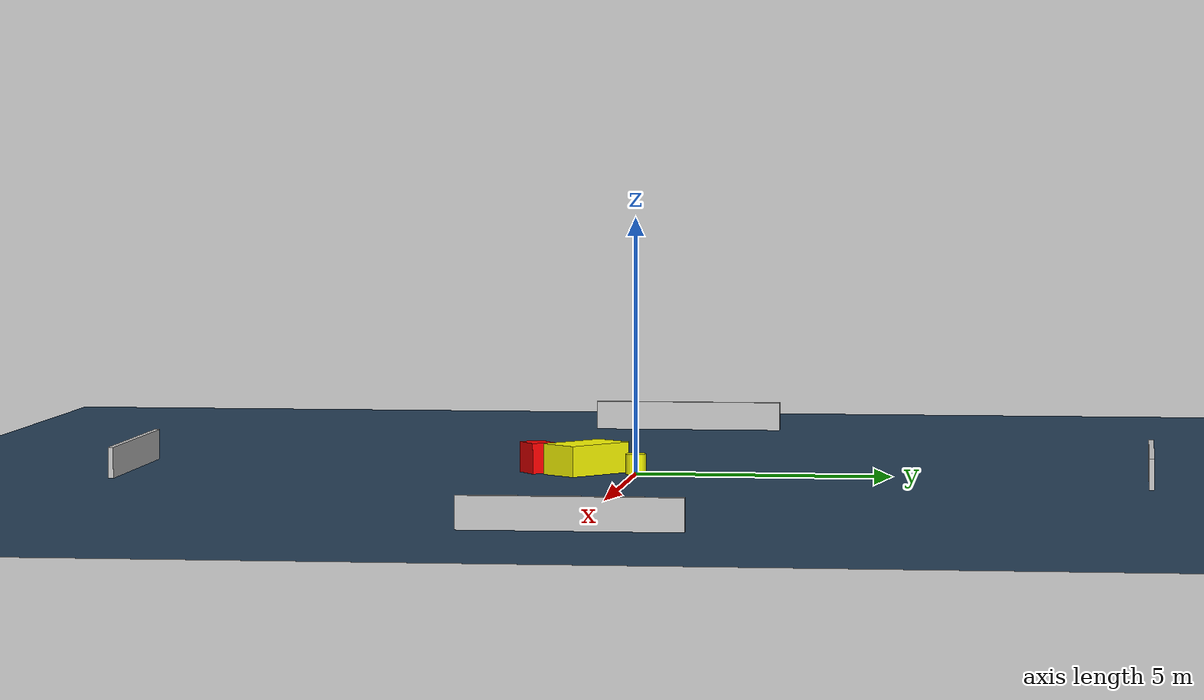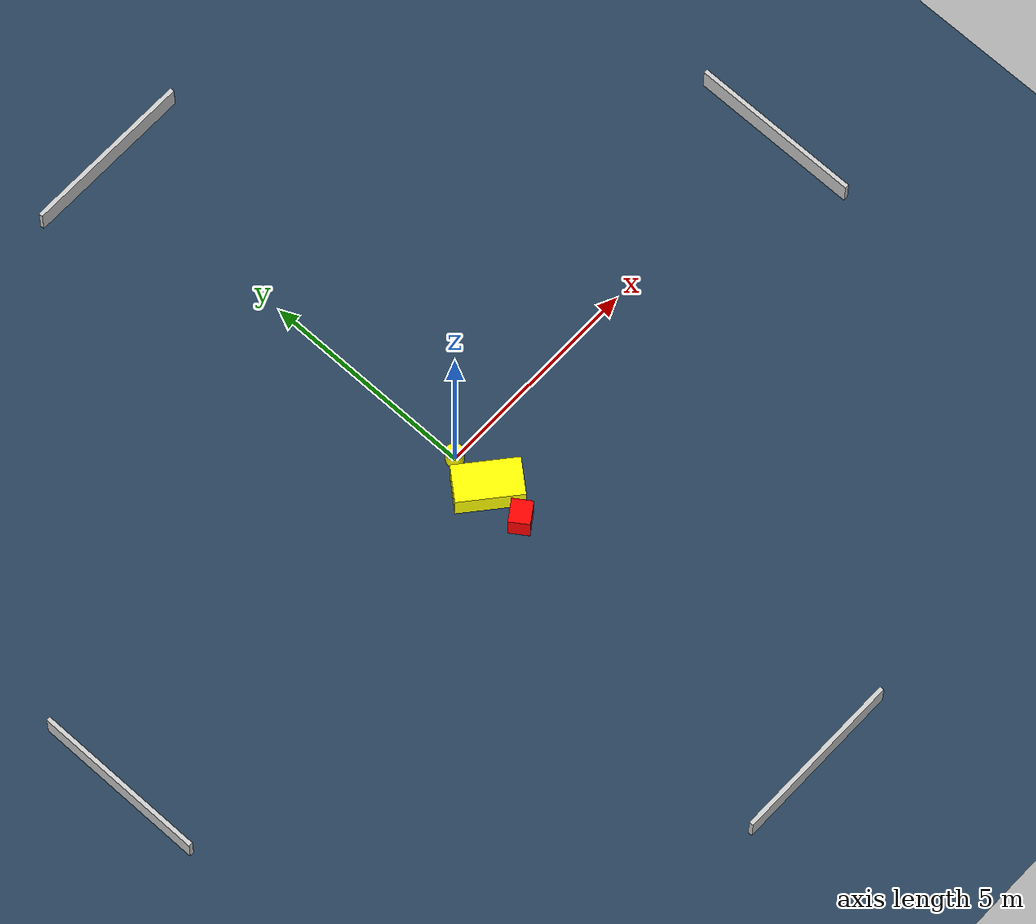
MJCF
<?xml version="1.0" ?>
<mujoco model="generated_environment">
  <option timestep="0.01" integrator="RK4" cone="elliptic"/>
  <default>
    <geom density="1"/>
  </default>
  <asset>
    <texture builtin="gradient" height="3072" name="skybox" rgb1="0.3 0.5 0.7" rgb2="0 0 0" type="skybox" width="512"/>
    <texture builtin="checker" height="300" name="groundplane" rgb1="0.2 0.3 0.4" rgb2="0.1 0.2 0.3" type="2d" width="300"/>
    <material name="groundplane" reflectance="0.2" texrepeat="5 5" texture="groundplane"/>
  </asset>
  <worldbody>
    <light dir="0 0 -1" directional="true" pos="0 0 1.5"/>
    <geom condim="3" friction="0.5 0.005 0.001" material="groundplane" name="floor" pos="0 0 0" size="0 0 0.05" type="plane"/>
    <body name="walls">
      <geom name="wall_1" condim="4" pos="-10.0 0.0 0.3" rgba="0.800000011920929 0.800000011920929 0.800000011920929 1.0" size="0.05 2.0 0.3" type="box"/>
      <geom name="wall_2" condim="4" pos="10.0 0.0 0.3" rgba="0.800000011920929 0.800000011920929 0.800000011920929 1.0" size="0.05 2.0 0.3" type="box"/>
      <geom name="wall_3" condim="4" pos="0.0 -10.0 0.3" rgba="0.800000011920929 0.800000011920929 0.800000011920929 1.0" size="2.0 0.05 0.3" type="box"/>
      <geom name="wall_4" condim="4" pos="0.0 10.0 0.3" rgba="0.800000011920929 0.800000011920929 0.800000011920929 1.0" size="2.0 0.05 0.3" type="box"/>
    </body>
    <body name="robot">
      <joint name="joint_x" type="slide" pos="0 0 0" axis="1 0 0"/>
      <joint name="joint_y" type="slide" pos="0 0 0" axis="0 1 0"/>
      <geom name="robot" type="cylinder" pos="0.0 0.0 0.2" size="0.2 0.2 0.0" mass="5.0" friction="1.0 0.005 0.0001" condim="4" rgba="1.0 1.0 0.0 1.0"/>
    </body>
    <body name="obstacle_1_movable">
      <geom name="obstacle_1_movable" condim="4" pos="-0.057117082517908 -0.9853970830910468 0.3" euler="0 0 320.04231514872396" friction="0.0 0.005 0.001" rgba="1.0 1.0 0.0 1.0" size="0.7446069572956351 0.42523750181634346 0.3" type="box" mass="0.1"/>
      <joint type="free"/>
    </body>
    <body name="obstacle_2_static">
      <geom name="obstacle_2_static" condim="4" pos="-0.12031457616811032 -1.9646072523963283 0.3" euler="0 0 34.58269715115858" friction="0.0 0.005 0.001" rgba="1.0 0.0 0.0 1.0" size="0.269441901574067 0.23596112860712393 0.3" type="box"/>
    </body>
  </worldbody>
  <actuator>
    <motor name="actuator_x" joint="joint_x" gear="1" ctrlrange="-1 1"/>
    <motor name="actuator_y" joint="joint_y" gear="1" ctrlrange="-1 1"/>
  </actuator>
</mujoco>
